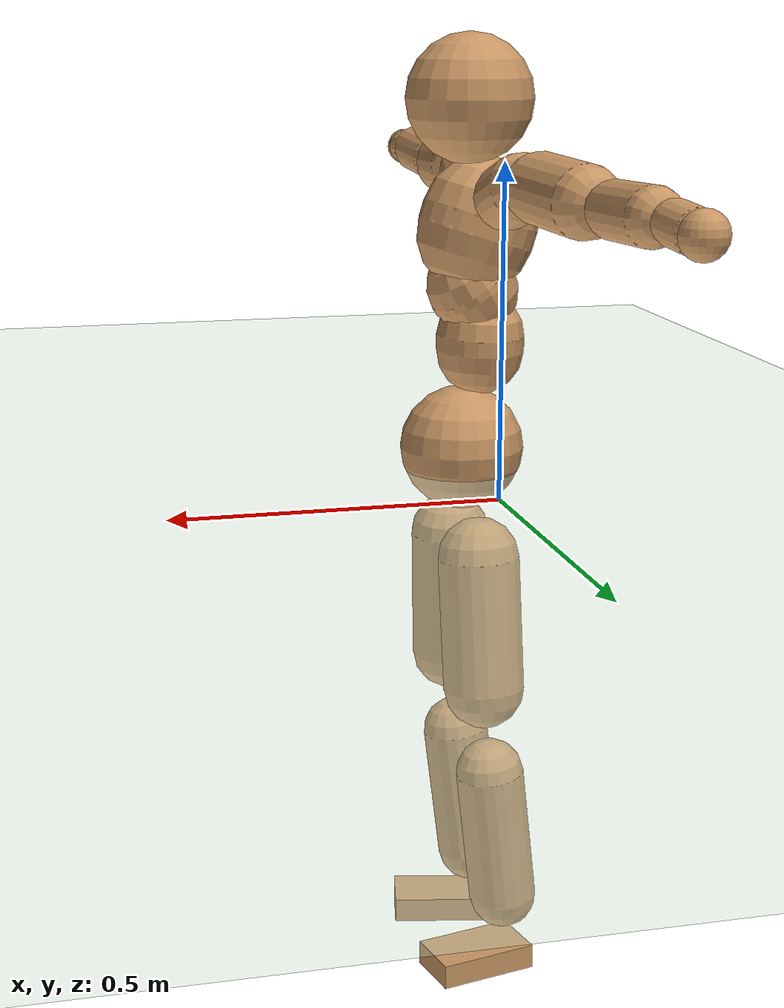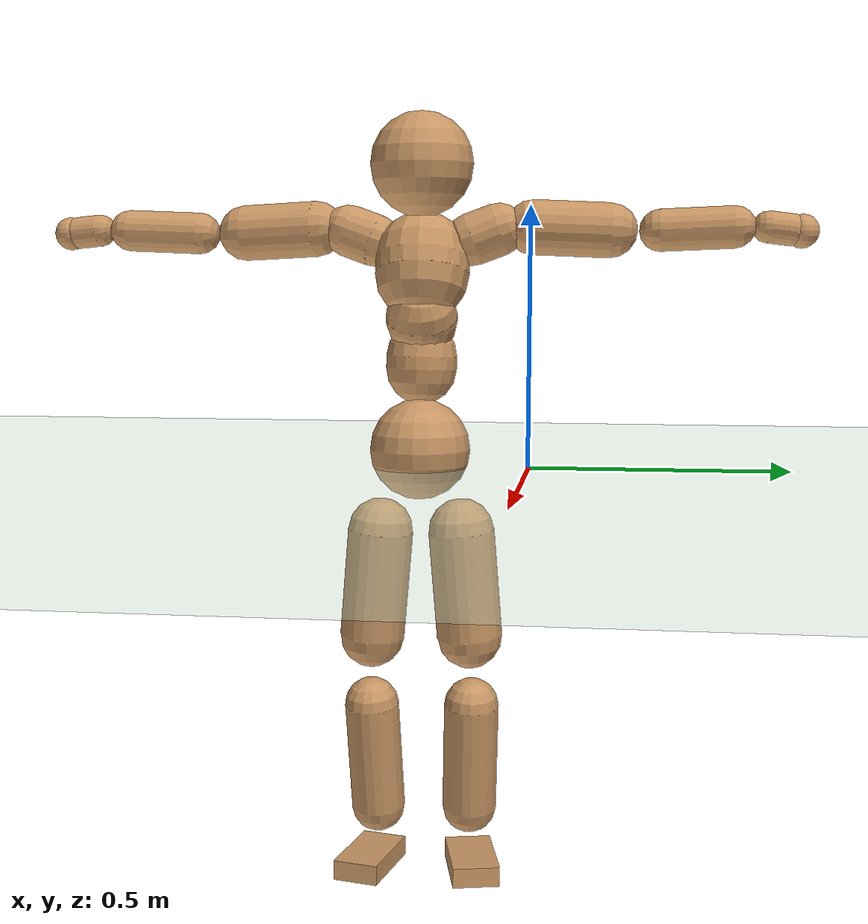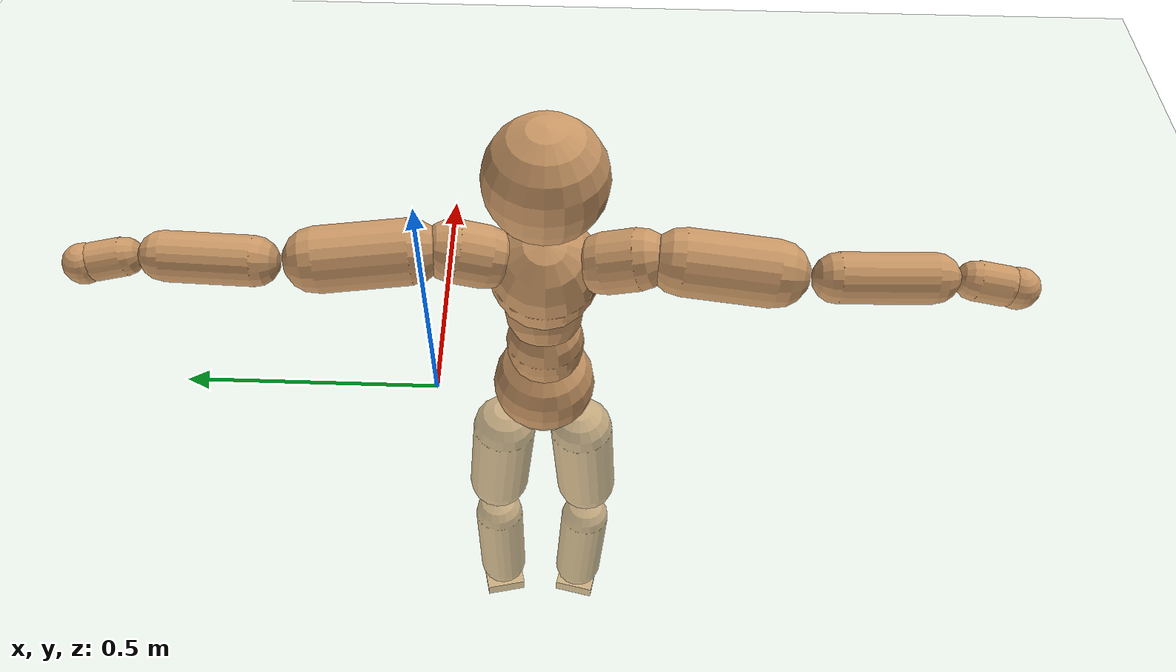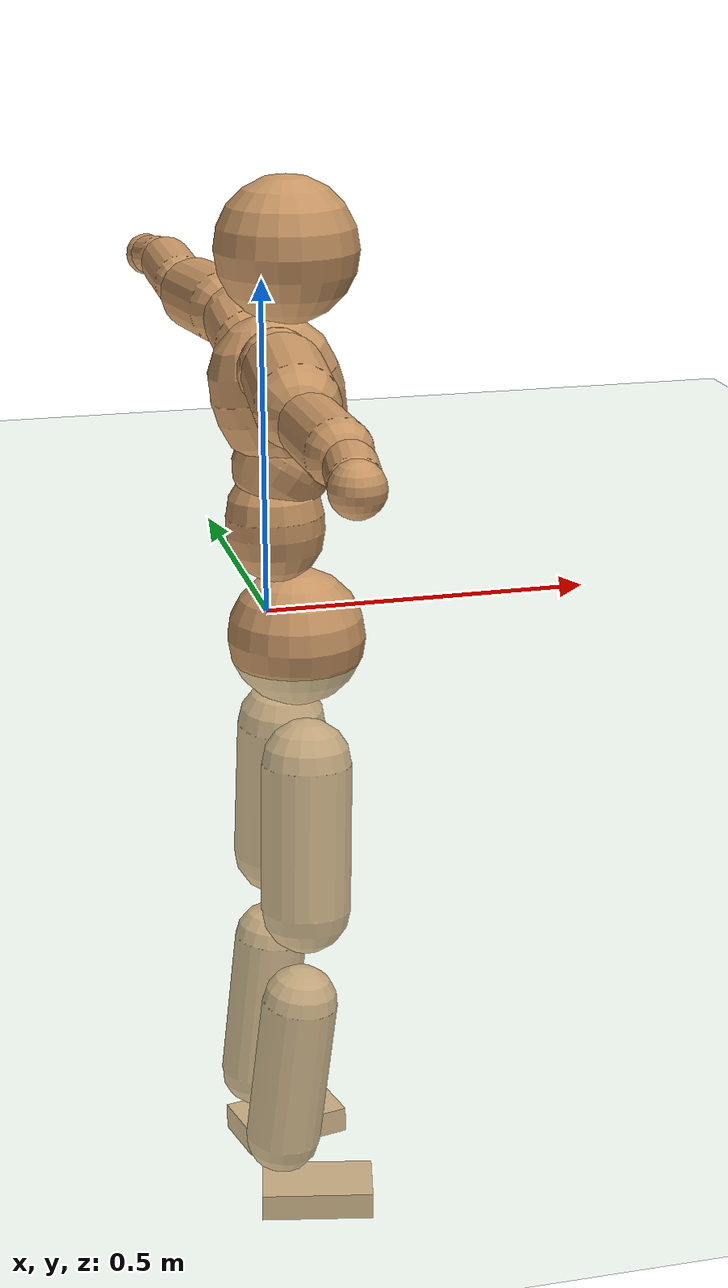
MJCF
<mujoco model="humanoid">
  <compiler coordinate="local"/>
  <default>
    <joint damping="0.0" armature="0.01" stiffness="0.0" limited="true"/>
    <geom conaffinity="1" condim="3" contype="7" margin="0.001" rgba="0.8 0.6 .4 1"/>
  </default>
  <asset>
    <texture type="skybox" builtin="gradient" rgb1=".4 .5 .6" rgb2="0 0 0" width="100" height="100"/>
    <texture builtin="flat" height="1278" mark="cross" markrgb="1 1 1" name="texgeom" random="0.01" rgb1="0.8 0.6 0.4" rgb2="0.8 0.6 0.4" type="cube" width="127"/>
    <texture builtin="checker" height="100" name="texplane" rgb1="0 0 0" rgb2="0.8 0.8 0.8" type="2d" width="100"/>
    <material name="MatPlane" reflectance="0.5" shininess="1" specular="1" texrepeat="60 60" texture="texplane"/>
    <material name="geom" texture="texgeom" texuniform="true"/>
  </asset>
  <worldbody>
    <light cutoff="100" diffuse="1 1 1" dir="-0 0 -1.3" directional="true" exponent="1" pos="0 0 1.3" specular=".1 .1 .1"/>
    <geom conaffinity="1" condim="3" name="floor" pos="0 0 0" rgba="0.8 0.9 0.8 1" size="100 100 .2" type="plane" material="MatPlane"/>
    <body name="Pelvis" pos="-0.0005 -0.2129 0.0333">
      <freejoint name="Pelvis"/>
      <geom type="sphere" contype="1" conaffinity="1" density="500" size="0.0988" pos="0.0000 0.0000 0.0000" name="Pelvis"/>
      <body name="L_Hip" pos="-0.0048 0.0758 -0.0915">
        <joint name="L_Hip_x" type="hinge" pos="0 0 0" axis="1 0 0" stiffness="800" damping="80" armature="0.02" range="-180.0000 180.0000"/>
        <joint name="L_Hip_y" type="hinge" pos="0 0 0" axis="0 1 0" stiffness="800" damping="80" armature="0.02" range="-180.0000 180.0000"/>
        <joint name="L_Hip_z" type="hinge" pos="0 0 0" axis="0 0 1" stiffness="800" damping="80" armature="0.02" range="-180.0000 180.0000"/>
        <geom type="capsule" contype="1" conaffinity="1" density="500" fromto="-0.0023 0.0055 -0.0715 -0.0091 0.0219 -0.2862" size="0.0651" name="L_Hip"/>
        <body name="L_Knee" pos="-0.0113 0.0273 -0.3577">
          <joint name="L_Knee_x" type="hinge" pos="0 0 0" axis="1 0 0" stiffness="800" damping="80" armature="0.02" range="-180.0000 180.0000"/>
          <joint name="L_Knee_y" type="hinge" pos="0 0 0" axis="0 1 0" stiffness="800" damping="80" armature="0.02" range="-180.0000 180.0000"/>
          <joint name="L_Knee_z" type="hinge" pos="0 0 0" axis="0 0 1" stiffness="800" damping="80" armature="0.02" range="-180.0000 180.0000"/>
          <geom type="capsule" contype="1" conaffinity="1" density="500" fromto="-0.0092 -0.0022 -0.0752 -0.0366 -0.0087 -0.3010" size="0.055" name="L_Knee"/>
          <body name="L_Ankle" pos="-0.0458 -0.0108 -0.3762">
            <joint name="L_Ankle_x" type="hinge" pos="0 0 0" axis="1 0 0" stiffness="800" damping="80" armature="0.02" range="-180.0000 180.0000"/>
            <joint name="L_Ankle_y" type="hinge" pos="0 0 0" axis="0 1 0" stiffness="800" damping="80" armature="0.02" range="-180.0000 180.0000"/>
            <joint name="L_Ankle_z" type="hinge" pos="0 0 0" axis="0 0 1" stiffness="800" damping="80" armature="0.02" range="-180.0000 180.0000"/>
            <geom type="box" contype="1" conaffinity="1" density="500" pos="0.0566 0.0126 -0.0270" size="0.082 0.0472 0.0201" quat="0.9940 0.0000 0.0000 0.1092" name="L_Ankle"/>
            <body name="L_Toe" pos="0.1131 0.0252 -0.0539">
              <joint name="L_Toe_x" type="hinge" pos="0 0 0" axis="1 0 0" stiffness="500" damping="50" armature="0.02" range="-180.0000 180.0000"/>
              <joint name="L_Toe_y" type="hinge" pos="0 0 0" axis="0 1 0" stiffness="500" damping="50" armature="0.02" range="-180.0000 180.0000"/>
              <joint name="L_Toe_z" type="hinge" pos="0 0 0" axis="0 0 1" stiffness="500" damping="50" armature="0.02" range="-180.0000 180.0000"/>
              <geom type="box" contype="1" conaffinity="1" density="500" pos="0.0000 0.0000 0.0264" size="0.001 0.0024 0.001" quat="0.9933 0.0000 0.0000 0.1156" name="L_Toe"/>
            </body>
          </body>
        </body>
      </body>
      <body name="R_Hip" pos="-0.002 -0.0735 -0.0913">
        <joint name="R_Hip_x" type="hinge" pos="0 0 0" axis="1 0 0" stiffness="800" damping="80" armature="0.02" range="-180.0000 180.0000"/>
        <joint name="R_Hip_y" type="hinge" pos="0 0 0" axis="0 1 0" stiffness="800" damping="80" armature="0.02" range="-180.0000 180.0000"/>
        <joint name="R_Hip_z" type="hinge" pos="0 0 0" axis="0 0 1" stiffness="800" damping="80" armature="0.02" range="-180.0000 180.0000"/>
        <geom type="capsule" contype="1" conaffinity="1" density="500" fromto="-0.0027 -0.0066 -0.0726 -0.0108 -0.0264 -0.2905" size="0.0644" name="R_Hip"/>
        <body name="R_Knee" pos="-0.0136 -0.033 -0.3631">
          <joint name="R_Knee_x" type="hinge" pos="0 0 0" axis="1 0 0" stiffness="800" damping="80" armature="0.02" range="-180.0000 180.0000"/>
          <joint name="R_Knee_y" type="hinge" pos="0 0 0" axis="0 1 0" stiffness="800" damping="80" armature="0.02" range="-180.0000 180.0000"/>
          <joint name="R_Knee_z" type="hinge" pos="0 0 0" axis="0 0 1" stiffness="800" damping="80" armature="0.02" range="-180.0000 180.0000"/>
          <geom type="capsule" contype="1" conaffinity="1" density="500" fromto="-0.0089 0.0026 -0.0754 -0.0357 0.0103 -0.3015" size="0.0551" name="R_Knee"/>
          <body name="R_Ankle" pos="-0.0447 0.0129 -0.3769">
            <joint name="R_Ankle_x" type="hinge" pos="0 0 0" axis="1 0 0" stiffness="800" damping="80" armature="0.02" range="-180.0000 180.0000"/>
            <joint name="R_Ankle_y" type="hinge" pos="0 0 0" axis="0 1 0" stiffness="800" damping="80" armature="0.02" range="-180.0000 180.0000"/>
            <joint name="R_Ankle_z" type="hinge" pos="0 0 0" axis="0 0 1" stiffness="800" damping="80" armature="0.02" range="-180.0000 180.0000"/>
            <geom type="box" contype="1" conaffinity="1" density="500" pos="0.0584 -0.0124 -0.0231" size="0.0827 0.0462 0.0203" quat="0.9945 0.0000 0.0000 -0.1044" name="R_Ankle"/>
            <body name="R_Toe" pos="0.1169 -0.0248 -0.0462">
              <joint name="R_Toe_x" type="hinge" pos="0 0 0" axis="1 0 0" stiffness="500" damping="50" armature="0.02" range="-180.0000 180.0000"/>
              <joint name="R_Toe_y" type="hinge" pos="0 0 0" axis="0 1 0" stiffness="500" damping="50" armature="0.02" range="-180.0000 180.0000"/>
              <joint name="R_Toe_z" type="hinge" pos="0 0 0" axis="0 0 1" stiffness="500" damping="50" armature="0.02" range="-180.0000 180.0000"/>
              <geom type="box" contype="1" conaffinity="1" density="500" pos="0.0000 0.0000 0.0245" size="0.0009 0.0023 0.0011" quat="0.9955 0.0000 0.0000 -0.0947" name="R_Toe"/>
            </body>
          </body>
        </body>
      </body>
      <body name="Torso" pos="-0.0267 -0.0022 0.1056">
        <joint name="Torso_x" type="hinge" pos="0 0 0" axis="1 0 0" stiffness="1000" damping="100" armature="0.02" range="-180.0000 180.0000"/>
        <joint name="Torso_y" type="hinge" pos="0 0 0" axis="0 1 0" stiffness="1000" damping="100" armature="0.02" range="-180.0000 180.0000"/>
        <joint name="Torso_z" type="hinge" pos="0 0 0" axis="0 0 1" stiffness="1000" damping="100" armature="0.02" range="-180.0000 180.0000"/>
        <geom type="capsule" contype="1" conaffinity="1" density="500" fromto="-0.0021 0.0019 0.0746 -0.0014 0.0012 0.0497" size="0.069657" name="Torso"/>
        <body name="Spine" pos="-0.0034 0.0031 0.1243">
          <joint name="Spine_x" type="hinge" pos="0 0 0" axis="1 0 0" stiffness="1000" damping="100" armature="0.02" range="-180.0000 180.0000"/>
          <joint name="Spine_y" type="hinge" pos="0 0 0" axis="0 1 0" stiffness="1000" damping="100" armature="0.02" range="-180.0000 180.0000"/>
          <joint name="Spine_z" type="hinge" pos="0 0 0" axis="0 0 1" stiffness="1000" damping="100" armature="0.02" range="-180.0000 180.0000"/>
          <geom type="capsule" contype="1" conaffinity="1" density="500" fromto="0.0189 0.0012 0.0293 0.0126 0.0008 0.0195" size="0.069843" name="Spine"/>
          <body name="Chest" pos="0.0314 0.002 0.0488">
            <joint name="Chest_x" type="hinge" pos="0 0 0" axis="1 0 0" stiffness="1000" damping="100" armature="0.02" range="-180.0000 180.0000"/>
            <joint name="Chest_y" type="hinge" pos="0 0 0" axis="0 1 0" stiffness="1000" damping="100" armature="0.02" range="-180.0000 180.0000"/>
            <joint name="Chest_z" type="hinge" pos="0 0 0" axis="0 0 1" stiffness="1000" damping="100" armature="0.02" range="-180.0000 180.0000"/>
            <geom type="capsule" contype="1" conaffinity="1" density="500" fromto="-0.0276 -0.0005 0.0893 -0.0184 -0.0003 0.0596" size="0.091884" name="Chest"/>
            <body name="Neck" pos="-0.0551 -0.001 0.2087">
              <joint name="Neck_x" type="hinge" pos="0 0 0" axis="1 0 0" stiffness="500" damping="50" armature="0.02" range="-180.0000 180.0000"/>
              <joint name="Neck_y" type="hinge" pos="0 0 0" axis="0 1 0" stiffness="500" damping="50" armature="0.02" range="-180.0000 180.0000"/>
              <joint name="Neck_z" type="hinge" pos="0 0 0" axis="0 0 1" stiffness="500" damping="50" armature="0.02" range="-180.0000 180.0000"/>
              <geom type="capsule" contype="1" conaffinity="1" density="500" fromto="0.0096 0.0004 0.0116 0.0384 0.0016 0.0463" size="0.038595" name="Neck"/>
              <body name="Head" pos="0.048 0.002 0.0579">
                <joint name="Head_x" type="hinge" pos="0 0 0" axis="1 0 0" stiffness="500" damping="50" armature="0.02" range="-180.0000 180.0000"/>
                <joint name="Head_y" type="hinge" pos="0 0 0" axis="0 1 0" stiffness="500" damping="50" armature="0.02" range="-180.0000 180.0000"/>
                <joint name="Head_z" type="hinge" pos="0 0 0" axis="0 0 1" stiffness="500" damping="50" armature="0.02" range="-180.0000 180.0000"/>
                <geom type="sphere" contype="1" conaffinity="1" density="500" size="0.0994" pos="0.0000 0.0000 0.0000" name="Head"/>
              </body>
            </body>
            <body name="L_Thorax" pos="-0.0388 0.0769 0.1199">
              <joint name="L_Thorax_x" type="hinge" pos="0 0 0" axis="1 0 0" stiffness="500" damping="50" armature="0.02" range="-180.0000 180.0000"/>
              <joint name="L_Thorax_y" type="hinge" pos="0 0 0" axis="0 1 0" stiffness="500" damping="50" armature="0.02" range="-180.0000 180.0000"/>
              <joint name="L_Thorax_z" type="hinge" pos="0 0 0" axis="0 0 1" stiffness="500" damping="50" armature="0.02" range="-180.0000 180.0000"/>
              <geom type="capsule" contype="1" conaffinity="1" density="500" fromto="-0.0018 0.0171 0.0063 -0.0072 0.0682 0.0251" size="0.0512" name="L_Thorax"/>
              <body name="L_Shoulder" pos="-0.0091 0.0853 0.0313">
                <joint name="L_Shoulder_x" type="hinge" pos="0 0 0" axis="1 0 0" stiffness="500" damping="50" armature="0.02" range="-720.0000 720.0000"/>
                <joint name="L_Shoulder_y" type="hinge" pos="0 0 0" axis="0 1 0" stiffness="500" damping="50" armature="0.02" range="-720.0000 720.0000"/>
                <joint name="L_Shoulder_z" type="hinge" pos="0 0 0" axis="0 0 1" stiffness="500" damping="50" armature="0.02" range="-720.0000 720.0000"/>
                <geom type="capsule" contype="1" conaffinity="1" density="500" fromto="-0.0058 0.0491 -0.0019 -0.0232 0.1964 -0.0078" size="0.0532" name="L_Shoulder"/>
                <body name="L_Elbow" pos="-0.029 0.2456 -0.0097">
                  <joint name="L_Elbow_x" type="hinge" pos="0 0 0" axis="1 0 0" stiffness="500" damping="50" armature="0.02" range="-720.0000 720.0000"/>
                  <joint name="L_Elbow_y" type="hinge" pos="0 0 0" axis="0 1 0" stiffness="500" damping="50" armature="0.02" range="-720.0000 720.0000"/>
                  <joint name="L_Elbow_z" type="hinge" pos="0 0 0" axis="0 0 1" stiffness="500" damping="50" armature="0.02" range="-720.0000 720.0000"/>
                  <geom type="capsule" contype="1" conaffinity="1" density="500" fromto="0.0002 0.0469 0.0018 0.0008 0.1875 0.0073" size="0.0405" name="L_Elbow"/>
                  <body name="L_Wrist" pos="0.001 0.2344 0.0091">
                    <joint name="L_Wrist_x" type="hinge" pos="0 0 0" axis="1 0 0" stiffness="300" damping="30" armature="0.02" range="-180.0000 180.0000"/>
                    <joint name="L_Wrist_y" type="hinge" pos="0 0 0" axis="0 1 0" stiffness="300" damping="30" armature="0.02" range="-180.0000 180.0000"/>
                    <joint name="L_Wrist_z" type="hinge" pos="0 0 0" axis="0 0 1" stiffness="300" damping="30" armature="0.02" range="-180.0000 180.0000"/>
                    <geom type="capsule" contype="1" conaffinity="1" density="500" fromto="-0.0027 0.0161 -0.0019 -0.0106 0.0645 -0.0078" size="0.0307" name="L_Wrist"/>
                    <body name="L_Hand" pos="-0.0133 0.0807 -0.0097">
                      <joint name="L_Hand_x" type="hinge" pos="0 0 0" axis="1 0 0" stiffness="300" damping="30" armature="0.02" range="-180.0000 180.0000"/>
                      <joint name="L_Hand_y" type="hinge" pos="0 0 0" axis="0 1 0" stiffness="300" damping="30" armature="0.02" range="-180.0000 180.0000"/>
                      <joint name="L_Hand_z" type="hinge" pos="0 0 0" axis="0 0 1" stiffness="300" damping="30" armature="0.02" range="-180.0000 180.0000"/>
                      <geom type="sphere" contype="1" conaffinity="1" density="500" size="0.0326" pos="0.0000 0.0000 0.0000" name="L_Hand"/>
                    </body>
                  </body>
                </body>
              </body>
            </body>
            <body name="R_Thorax" pos="-0.0439 -0.0783 0.1181">
              <joint name="R_Thorax_x" type="hinge" pos="0 0 0" axis="1 0 0" stiffness="500" damping="50" armature="0.02" range="-180.0000 180.0000"/>
              <joint name="R_Thorax_y" type="hinge" pos="0 0 0" axis="0 1 0" stiffness="500" damping="50" armature="0.02" range="-180.0000 180.0000"/>
              <joint name="R_Thorax_z" type="hinge" pos="0 0 0" axis="0 0 1" stiffness="500" damping="50" armature="0.02" range="-180.0000 180.0000"/>
              <geom type="capsule" contype="1" conaffinity="1" density="500" fromto="-0.0021 -0.0179 0.0064 -0.0084 -0.0716 0.0257" size="0.0504" name="R_Thorax"/>
              <body name="R_Shoulder" pos="-0.0105 -0.0895 0.0321">
                <joint name="R_Shoulder_x" type="hinge" pos="0 0 0" axis="1 0 0" stiffness="500" damping="50" armature="0.02" range="-720.0000 720.0000"/>
                <joint name="R_Shoulder_y" type="hinge" pos="0 0 0" axis="0 1 0" stiffness="500" damping="50" armature="0.02" range="-720.0000 720.0000"/>
                <joint name="R_Shoulder_z" type="hinge" pos="0 0 0" axis="0 0 1" stiffness="500" damping="50" armature="0.02" range="-720.0000 720.0000"/>
                <geom type="capsule" contype="1" conaffinity="1" density="500" fromto="-0.0044 -0.0483 -0.0023 -0.0175 -0.1932 -0.0093" size="0.0544" name="R_Shoulder"/>
                <body name="R_Elbow" pos="-0.0219 -0.2415 -0.0116">
                  <joint name="R_Elbow_x" type="hinge" pos="0 0 0" axis="1 0 0" stiffness="500" damping="50" armature="0.02" range="-720.0000 720.0000"/>
                  <joint name="R_Elbow_y" type="hinge" pos="0 0 0" axis="0 1 0" stiffness="500" damping="50" armature="0.02" range="-720.0000 720.0000"/>
                  <joint name="R_Elbow_z" type="hinge" pos="0 0 0" axis="0 0 1" stiffness="500" damping="50" armature="0.02" range="-720.0000 720.0000"/>
                  <geom type="capsule" contype="1" conaffinity="1" density="500" fromto="-0.0003 -0.0483 0.0020 -0.0013 -0.1931 0.0080" size="0.0406" name="R_Elbow"/>
                  <body name="R_Wrist" pos="-0.0016 -0.2413 0.01">
                    <joint name="R_Wrist_x" type="hinge" pos="0 0 0" axis="1 0 0" stiffness="300" damping="30" armature="0.02" range="-180.0000 180.0000"/>
                    <joint name="R_Wrist_y" type="hinge" pos="0 0 0" axis="0 1 0" stiffness="300" damping="30" armature="0.02" range="-180.0000 180.0000"/>
                    <joint name="R_Wrist_z" type="hinge" pos="0 0 0" axis="0 0 1" stiffness="300" damping="30" armature="0.02" range="-180.0000 180.0000"/>
                    <geom type="capsule" contype="1" conaffinity="1" density="500" fromto="-0.0021 -0.0162 -0.0015 -0.0085 -0.0650 -0.0058" size="0.0315" name="R_Wrist"/>
                    <body name="R_Hand" pos="-0.0106 -0.0812 -0.0073">
                      <joint name="R_Hand_x" type="hinge" pos="0 0 0" axis="1 0 0" stiffness="300" damping="30" armature="0.02" range="-180.0000 180.0000"/>
                      <joint name="R_Hand_y" type="hinge" pos="0 0 0" axis="0 1 0" stiffness="300" damping="30" armature="0.02" range="-180.0000 180.0000"/>
                      <joint name="R_Hand_z" type="hinge" pos="0 0 0" axis="0 0 1" stiffness="300" damping="30" armature="0.02" range="-180.0000 180.0000"/>
                      <geom type="sphere" contype="1" conaffinity="1" density="500" size="0.0328" pos="0.0000 0.0000 0.0000" name="R_Hand"/>
                    </body>
                  </body>
                </body>
              </body>
            </body>
          </body>
        </body>
      </body>
    </body>
  </worldbody>
  <actuator>
    <motor name="L_Hip_x" joint="L_Hip_x" gear="500"/>
    <motor name="L_Hip_y" joint="L_Hip_y" gear="500"/>
    <motor name="L_Hip_z" joint="L_Hip_z" gear="500"/>
    <motor name="L_Knee_x" joint="L_Knee_x" gear="500"/>
    <motor name="L_Knee_y" joint="L_Knee_y" gear="500"/>
    <motor name="L_Knee_z" joint="L_Knee_z" gear="500"/>
    <motor name="L_Ankle_x" joint="L_Ankle_x" gear="500"/>
    <motor name="L_Ankle_y" joint="L_Ankle_y" gear="500"/>
    <motor name="L_Ankle_z" joint="L_Ankle_z" gear="500"/>
    <motor name="L_Toe_x" joint="L_Toe_x" gear="500"/>
    <motor name="L_Toe_y" joint="L_Toe_y" gear="500"/>
    <motor name="L_Toe_z" joint="L_Toe_z" gear="500"/>
    <motor name="R_Hip_x" joint="R_Hip_x" gear="500"/>
    <motor name="R_Hip_y" joint="R_Hip_y" gear="500"/>
    <motor name="R_Hip_z" joint="R_Hip_z" gear="500"/>
    <motor name="R_Knee_x" joint="R_Knee_x" gear="500"/>
    <motor name="R_Knee_y" joint="R_Knee_y" gear="500"/>
    <motor name="R_Knee_z" joint="R_Knee_z" gear="500"/>
    <motor name="R_Ankle_x" joint="R_Ankle_x" gear="500"/>
    <motor name="R_Ankle_y" joint="R_Ankle_y" gear="500"/>
    <motor name="R_Ankle_z" joint="R_Ankle_z" gear="500"/>
    <motor name="R_Toe_x" joint="R_Toe_x" gear="500"/>
    <motor name="R_Toe_y" joint="R_Toe_y" gear="500"/>
    <motor name="R_Toe_z" joint="R_Toe_z" gear="500"/>
    <motor name="Torso_x" joint="Torso_x" gear="500"/>
    <motor name="Torso_y" joint="Torso_y" gear="500"/>
    <motor name="Torso_z" joint="Torso_z" gear="500"/>
    <motor name="Spine_x" joint="Spine_x" gear="500"/>
    <motor name="Spine_y" joint="Spine_y" gear="500"/>
    <motor name="Spine_z" joint="Spine_z" gear="500"/>
    <motor name="Chest_x" joint="Chest_x" gear="500"/>
    <motor name="Chest_y" joint="Chest_y" gear="500"/>
    <motor name="Chest_z" joint="Chest_z" gear="500"/>
    <motor name="Neck_x" joint="Neck_x" gear="500"/>
    <motor name="Neck_y" joint="Neck_y" gear="500"/>
    <motor name="Neck_z" joint="Neck_z" gear="500"/>
    <motor name="Head_x" joint="Head_x" gear="500"/>
    <motor name="Head_y" joint="Head_y" gear="500"/>
    <motor name="Head_z" joint="Head_z" gear="500"/>
    <motor name="L_Thorax_x" joint="L_Thorax_x" gear="500"/>
    <motor name="L_Thorax_y" joint="L_Thorax_y" gear="500"/>
    <motor name="L_Thorax_z" joint="L_Thorax_z" gear="500"/>
    <motor name="L_Shoulder_x" joint="L_Shoulder_x" gear="500"/>
    <motor name="L_Shoulder_y" joint="L_Shoulder_y" gear="500"/>
    <motor name="L_Shoulder_z" joint="L_Shoulder_z" gear="500"/>
    <motor name="L_Elbow_x" joint="L_Elbow_x" gear="500"/>
    <motor name="L_Elbow_y" joint="L_Elbow_y" gear="500"/>
    <motor name="L_Elbow_z" joint="L_Elbow_z" gear="500"/>
    <motor name="L_Wrist_x" joint="L_Wrist_x" gear="500"/>
    <motor name="L_Wrist_y" joint="L_Wrist_y" gear="500"/>
    <motor name="L_Wrist_z" joint="L_Wrist_z" gear="500"/>
    <motor name="L_Hand_x" joint="L_Hand_x" gear="500"/>
    <motor name="L_Hand_y" joint="L_Hand_y" gear="500"/>
    <motor name="L_Hand_z" joint="L_Hand_z" gear="500"/>
    <motor name="R_Thorax_x" joint="R_Thorax_x" gear="500"/>
    <motor name="R_Thorax_y" joint="R_Thorax_y" gear="500"/>
    <motor name="R_Thorax_z" joint="R_Thorax_z" gear="500"/>
    <motor name="R_Shoulder_x" joint="R_Shoulder_x" gear="500"/>
    <motor name="R_Shoulder_y" joint="R_Shoulder_y" gear="500"/>
    <motor name="R_Shoulder_z" joint="R_Shoulder_z" gear="500"/>
    <motor name="R_Elbow_x" joint="R_Elbow_x" gear="500"/>
    <motor name="R_Elbow_y" joint="R_Elbow_y" gear="500"/>
    <motor name="R_Elbow_z" joint="R_Elbow_z" gear="500"/>
    <motor name="R_Wrist_x" joint="R_Wrist_x" gear="500"/>
    <motor name="R_Wrist_y" joint="R_Wrist_y" gear="500"/>
    <motor name="R_Wrist_z" joint="R_Wrist_z" gear="500"/>
    <motor name="R_Hand_x" joint="R_Hand_x" gear="500"/>
    <motor name="R_Hand_y" joint="R_Hand_y" gear="500"/>
    <motor name="R_Hand_z" joint="R_Hand_z" gear="500"/>
  </actuator>
  <contact>
    <exclude body1="Torso" body2="Chest"/>
    <exclude body1="Head" body2="Chest"/>
    <exclude body1="R_Knee" body2="R_Toe"/>
    <exclude body1="R_Knee" body2="L_Ankle"/>
    <exclude body1="R_Knee" body2="L_Toe"/>
    <exclude body1="L_Knee" body2="L_Toe"/>
    <exclude body1="L_Knee" body2="R_Ankle"/>
    <exclude body1="L_Knee" body2="R_Toe"/>
    <exclude body1="L_Shoulder" body2="Chest"/>
    <exclude body1="R_Shoulder" body2="Chest"/>
  </contact>
  <sensor/>
  <size njmax="700" nconmax="700"/>
</mujoco>
